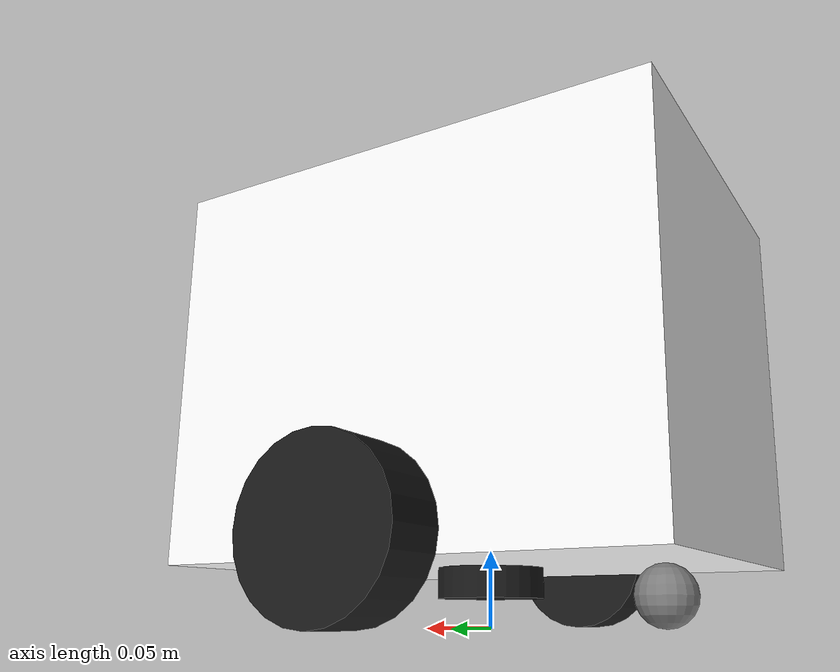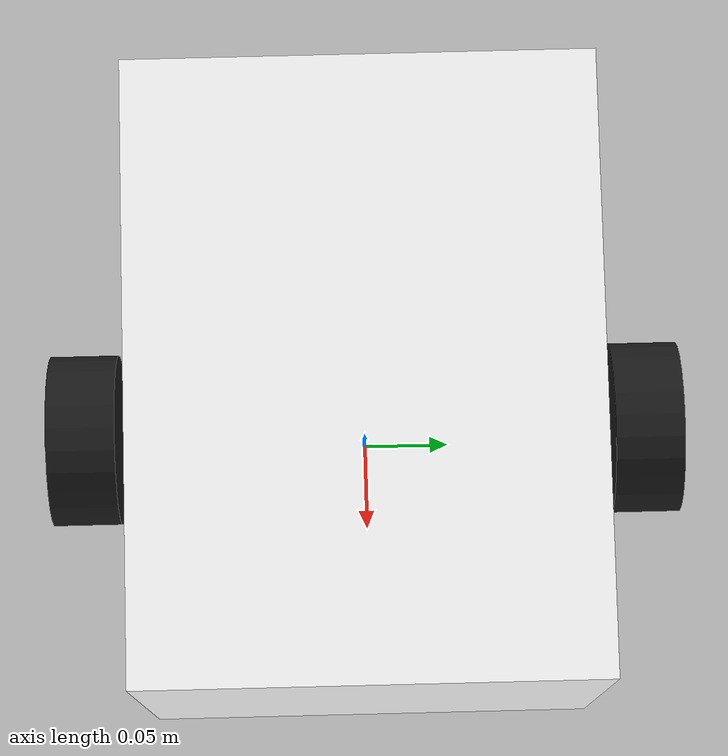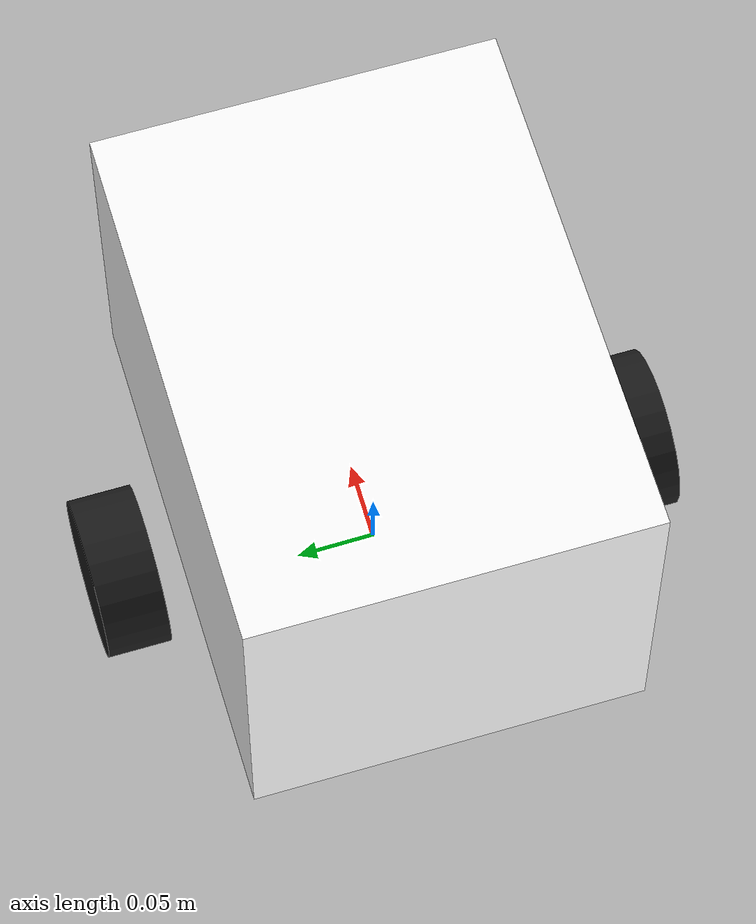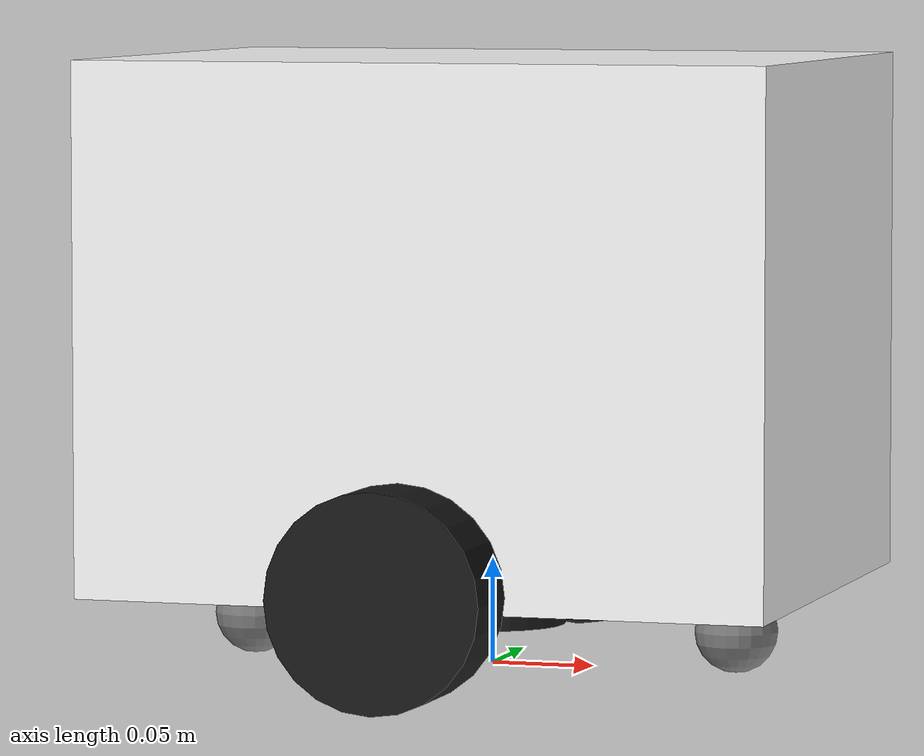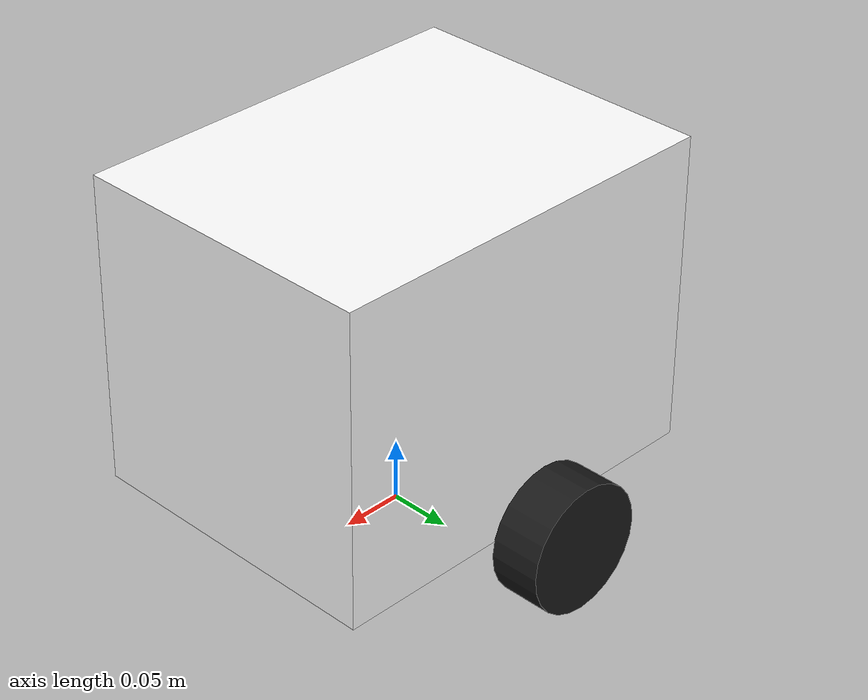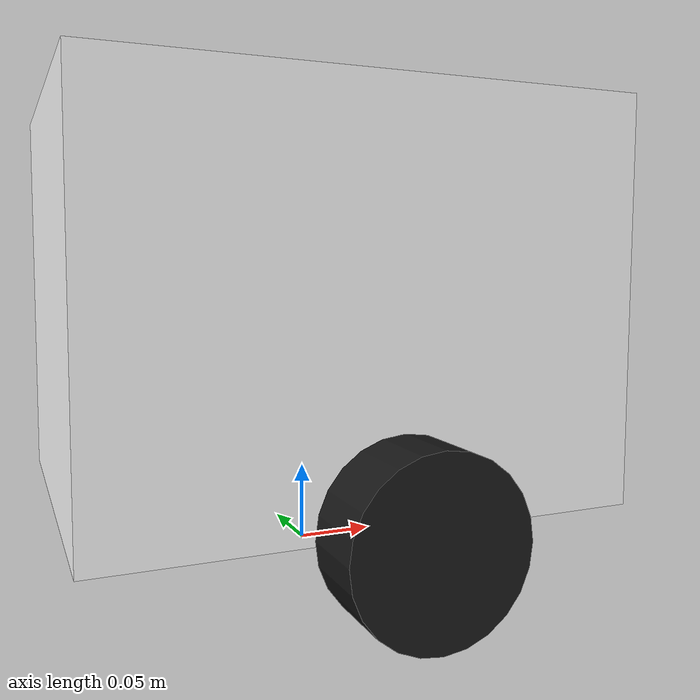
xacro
<?xml version="1.0"?>
<robot xmlns:xacro="http://www.ros.org/wiki/xacro" name="amr4">

  <!-- Core chassis + 4 wheels -->
  <xacro:include filename="$(find Ros_lidar_bot)/description/slam.xacro"/>

  <!-- LiDAR link -->
  <xacro:include filename="$(find Ros_lidar_bot)/description/lidar.xacro"/>

  <!-- IMU link -->
  <xacro:include filename="$(find Ros_lidar_bot)/description/imu.xacro"/>

</robot>

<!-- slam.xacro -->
<robot name="slam" xmlns:xacro="http://www.ros.org/wiki/xacro">

  <!-- ============================================================
       CHASSIS & WHEEL DIMENSIONS — FILL IN YOUR VALUES (metres)
       ============================================================ -->

  <!-- Chassis box size -->
  <xacro:property name="chassis_length"  value="0.33"/>   <!-- front-to-back   -->
  <xacro:property name="chassis_width"   value="0.25"/>   <!-- left-to-right   -->
  <xacro:property name="chassis_height"  value="0.25"/>   <!-- bottom-to-top   -->

  <!-- Drive wheel -->
  <xacro:property name="wheel_radius"    value="0.05035"/>   <!-- RADIUS = 50.35 mm (from sketch) -->
  <xacro:property name="wheel_width"     value="0.04"/>       <!-- axial thickness -->
  <!-- X position of wheel axle from robot centre (0 = at centre) -->
  <xacro:property name="wheel_x"         value="0.0"/>
  <!-- Half-separation: each wheel is this far from the centre in Y
       Text said 33cm → 0.165; sketch front-face shows ~35cm → 0.175
       CONFIRM and update this value! -->
  <xacro:property name="wheel_half_sep"  value="0.165"/>
  <!-- Wheel centre height above chassis bottom (base_link) = 11 mm -->
  <xacro:property name="wheel_z"         value="0.011"/>

  <!-- Caster wheels -->
  <xacro:property name="caster_radius"    value="0.019675"/>  <!-- ball caster radius (diameter = 39.35 mm = 50.35 - 11) -->
  <xacro:property name="caster_front_x"  value="0.12"/>   <!-- front caster X     -->
  <xacro:property name="caster_rear_x"   value="-0.12"/>   <!-- rear  caster X     -->

  <xacro:property name="ground_to_base"  value="${wheel_radius - wheel_z}"/>

  <!-- ============================================================
       MATERIALS
       ============================================================ -->
  <material name="white"><color rgba="1.0 1.0 1.0 1.0"/></material>
  <material name="black"><color rgba="0.1 0.1 0.1 1.0"/></material>
  <material name="grey" ><color rgba="0.5 0.5 0.5 1.0"/></material>

  <!-- ============================================================
       base_footprint  (ground-plane projection, zero-size link)
       ============================================================ -->
  <link name="base_footprint"/>

  <!-- base_footprint → base_link
       base_link is at the centre of the BOTTOM FACE of the chassis box.
       It sits (wheel_radius - wheel_z) above ground so wheels touch ground. -->
  <joint name="base_footprint_joint" type="fixed">
    <parent link="base_footprint"/>
    <child  link="base_link"/>
    <origin xyz="0 0 ${ground_to_base}" rpy="0 0 0"/>
  </joint>

  <link name="base_link">
    <visual>
      <origin xyz="0 0 ${chassis_height/2}" rpy="0 0 0"/>
      <geometry>
        <box size="${chassis_length} ${chassis_width} ${chassis_height}"/>
      </geometry>
      <material name="white"/>
    </visual>
    <collision>
      <origin xyz="0 0 ${chassis_height/2}" rpy="0 0 0"/>
      <geometry>
        <box size="${chassis_length} ${chassis_width} ${chassis_height}"/>
      </geometry>
    </collision>
    <inertial>
      <!-- Centre of mass at geometric centre of box -->
      <origin xyz="0 0 ${chassis_height/2}" rpy="0 0 0"/>
      <mass value="2.0"/>
      <inertia
        ixx="${(1.0/12.0)*2.0*(chassis_width*chassis_width + chassis_height*chassis_height)}"
        iyy="${(1.0/12.0)*2.0*(chassis_length*chassis_length + chassis_height*chassis_height)}"
        izz="${(1.0/12.0)*2.0*(chassis_length*chassis_length + chassis_width*chassis_width)}"
        ixy="0" iyz="0" ixz="0"/>
    </inertial>
  </link>

  <joint name="left_wheel_joint" type="continuous">
    <parent link="base_link"/>
    <child  link="left_wheel"/>
    <origin xyz="${wheel_x} ${wheel_half_sep} ${wheel_z}" rpy="0 0 0"/>
    <axis xyz="0 1 0"/>
  </joint>

  <link name="left_wheel">
    <visual>
      <origin xyz="0 0 0" rpy="${pi/2} 0 0"/>
      <geometry>
        <cylinder radius="${wheel_radius}" length="${wheel_width}"/>
      </geometry>
      <material name="black"/>
    </visual>
    <collision>
      <origin xyz="0 0 0" rpy="${pi/2} 0 0"/>
      <geometry>
        <cylinder radius="${wheel_radius}" length="${wheel_width}"/>
      </geometry>
    </collision>
    <inertial>
      <origin xyz="0 0 0" rpy="${pi/2} 0 0"/>
      <mass value="0.5"/>
      <inertia
        ixx="${(1.0/12.0)*0.5*(3*wheel_radius*wheel_radius + wheel_width*wheel_width)}"
        iyy="${(1.0/2.0)*0.5*wheel_radius*wheel_radius}"
        izz="${(1.0/12.0)*0.5*(3*wheel_radius*wheel_radius + wheel_width*wheel_width)}"
        ixy="0" iyz="0" ixz="0"/>
    </inertial>
  </link>

  <!-- ============================================================
       RIGHT WHEEL  (negative Y side)
       ============================================================ -->
  <joint name="right_wheel_joint" type="continuous">
    <parent link="base_link"/>
    <child  link="right_wheel"/>
    <origin xyz="${wheel_x} ${-wheel_half_sep} ${wheel_z}" rpy="0 0 0"/>
    <axis xyz="0 1 0"/>
  </joint>

  <link name="right_wheel">
    <visual>
      <origin xyz="0 0 0" rpy="${pi/2} 0 0"/>
      <geometry>
        <cylinder radius="${wheel_radius}" length="${wheel_width}"/>
      </geometry>
      <material name="black"/>
    </visual>
    <collision>
      <origin xyz="0 0 0" rpy="${pi/2} 0 0"/>
      <geometry>
        <cylinder radius="${wheel_radius}" length="${wheel_width}"/>
      </geometry>
    </collision>
    <inertial>
      <origin xyz="0 0 0" rpy="${pi/2} 0 0"/>
      <mass value="0.5"/>
      <inertia
        ixx="${(1.0/12.0)*0.5*(3*wheel_radius*wheel_radius + wheel_width*wheel_width)}"
        iyy="${(1.0/2.0)*0.5*wheel_radius*wheel_radius}"
        izz="${(1.0/12.0)*0.5*(3*wheel_radius*wheel_radius + wheel_width*wheel_width)}"
        ixy="0" iyz="0" ixz="0"/>
    </inertial>
  </link>

  <!-- ============================================================
       FRONT CASTER  (passive ball caster — fixed joint)
       ============================================================ -->
  <joint name="caster_front_joint" type="fixed">
    <parent link="base_link"/>
    <child  link="caster_front_link"/>
    <!-- caster centre sits at wheel ground level; same Z as drive wheel bottom -->
    <origin xyz="${caster_front_x} 0 ${-caster_radius}" rpy="0 0 0"/>
  </joint>

  <link name="caster_front_link">
    <visual>
      <origin xyz="0 0 0" rpy="0 0 0"/>
      <geometry>
        <sphere radius="${caster_radius}"/>
      </geometry>
      <material name="grey"/>
    </visual>
    <collision>
      <origin xyz="0 0 0" rpy="0 0 0"/>
      <geometry>
        <sphere radius="${caster_radius}"/>
      </geometry>
    </collision>
    <inertial>
      <origin xyz="0 0 0" rpy="0 0 0"/>
      <mass value="0.05"/>
      <inertia
        ixx="${(2.0/5.0)*0.05*caster_radius*caster_radius}"
        iyy="${(2.0/5.0)*0.05*caster_radius*caster_radius}"
        izz="${(2.0/5.0)*0.05*caster_radius*caster_radius}"
        ixy="0" iyz="0" ixz="0"/>
    </inertial>
  </link>

  <!-- ============================================================
       REAR CASTER  (passive ball caster — fixed joint)
       ============================================================ -->
  <joint name="caster_rear_joint" type="fixed">
    <parent link="base_link"/>
    <child  link="caster_rear_link"/>
    <origin xyz="${caster_rear_x} 0 ${-caster_radius}" rpy="0 0 0"/>
  </joint>

  <link name="caster_rear_link">
    <visual>
      <origin xyz="0 0 0" rpy="0 0 0"/>
      <geometry>
        <sphere radius="${caster_radius}"/>
      </geometry>
      <material name="grey"/>
    </visual>
    <collision>
      <origin xyz="0 0 0" rpy="0 0 0"/>
      <geometry>
        <sphere radius="${caster_radius}"/>
      </geometry>
    </collision>
    <inertial>
      <origin xyz="0 0 0" rpy="0 0 0"/>
      <mass value="0.05"/>
      <inertia
        ixx="${(2.0/5.0)*0.05*caster_radius*caster_radius}"
        iyy="${(2.0/5.0)*0.05*caster_radius*caster_radius}"
        izz="${(2.0/5.0)*0.05*caster_radius*caster_radius}"
        ixy="0" iyz="0" ixz="0"/>
    </inertial>
  </link>

</robot>

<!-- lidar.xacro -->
<robot xmlns:xacro="http://www.ros.org/wiki/xacro">

  <xacro:property name="laser_x"      value="0.0"/>  <!-- forward/back  -->
  <xacro:property name="laser_y"      value="0.0"/>  <!-- left/right    -->
  <xacro:property name="laser_z"      value="0.0"/>  <!-- height above base_link (e.g. 2nd floor height) -->

  <!-- Lidar cylinder dimensions (default ~RPLidar A1) -->
  <xacro:property name="laser_radius" value="0.035"/> <!-- 70 mm diameter -->
  <xacro:property name="laser_height" value="0.040"/> <!-- 40 mm tall     -->

  <!-- ============================================================
       LIDAR JOINT & LINK
       ============================================================ -->
  <joint name="laser_joint" type="fixed">
    <parent link="base_link"/>
    <child  link="laser_frame"/>
    <origin xyz="${laser_x} ${laser_y} ${laser_z}" rpy="0 0 0"/>
  </joint>

  <link name="laser_frame">
    <visual>
      <origin xyz="0 0 0" rpy="0 0 0"/>
      <geometry>
        <cylinder radius="${laser_radius}" length="${laser_height}"/>
      </geometry>
      <material name="black">
        <color rgba="0.1 0.1 0.1 1.0"/>
      </material>
    </visual>
    <collision>
      <origin xyz="0 0 0" rpy="0 0 0"/>
      <geometry>
        <cylinder radius="${laser_radius}" length="${laser_height}"/>
      </geometry>
    </collision>
    <inertial>
      <origin xyz="0 0 0" rpy="0 0 0"/>
      <mass value="0.2"/>
      <inertia
        ixx="${(1.0/12.0)*0.2*(3*laser_radius*laser_radius + laser_height*laser_height)}"
        iyy="${(1.0/12.0)*0.2*(3*laser_radius*laser_radius + laser_height*laser_height)}"
        izz="${(1.0/2.0)*0.2*laser_radius*laser_radius}"
        ixy="0" iyz="0" ixz="0"/>
    </inertial>
  </link>

</robot>

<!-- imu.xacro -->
<robot xmlns:xacro="http://www.ros.org/wiki/xacro">

  <!-- ============================================================
       IMU POSITION — FILL IN YOUR VALUES (metres, from base_link)
       ============================================================ -->
  <xacro:property name="imu_x"  value="0.0"/>  <!-- forward/back  -->
  <xacro:property name="imu_y"  value="0.0"/>  <!-- left/right    -->
  <xacro:property name="imu_z"  value="0.05"/>  <!-- height        -->

  <!-- IMU box size (small PCB) -->
  <xacro:property name="imu_size_x" value="0.030"/>
  <xacro:property name="imu_size_y" value="0.030"/>
  <xacro:property name="imu_size_z" value="0.010"/>

  <!-- ============================================================
       IMU JOINT & LINK
       ============================================================ -->
  <joint name="imu_joint" type="fixed">
    <parent link="base_link"/>
    <child  link="imu_link"/>
    <origin xyz="${imu_x} ${imu_y} ${imu_z}" rpy="0 0 0"/>
  </joint>

  <link name="imu_link">
    <visual>
      <origin xyz="0 0 0" rpy="0 0 0"/>
      <geometry>
        <box size="${imu_size_x} ${imu_size_y} ${imu_size_z}"/>
      </geometry>
      <material name="green">
        <color rgba="0.0 0.8 0.0 1.0"/>
      </material>
    </visual>
    <collision>
      <origin xyz="0 0 0" rpy="0 0 0"/>
      <geometry>
        <box size="${imu_size_x} ${imu_size_y} ${imu_size_z}"/>
      </geometry>
    </collision>
    <inertial>
      <origin xyz="0 0 0" rpy="0 0 0"/>
      <mass value="0.01"/>
      <inertia
        ixx="${(1.0/12.0)*0.01*(imu_size_y*imu_size_y + imu_size_z*imu_size_z)}"
        iyy="${(1.0/12.0)*0.01*(imu_size_x*imu_size_x + imu_size_z*imu_size_z)}"
        izz="${(1.0/12.0)*0.01*(imu_size_x*imu_size_x + imu_size_y*imu_size_y)}"
        ixy="0" iyz="0" ixz="0"/>
    </inertial>
  </link>

</robot>
